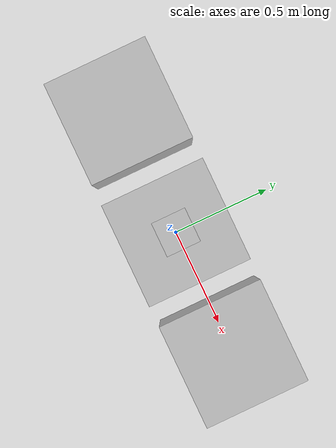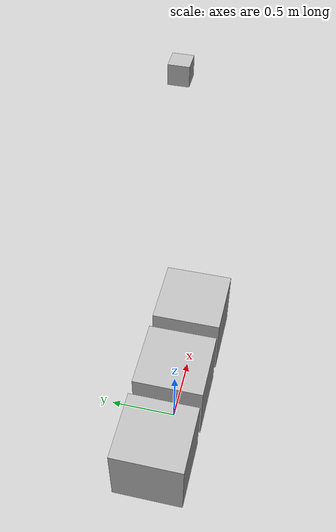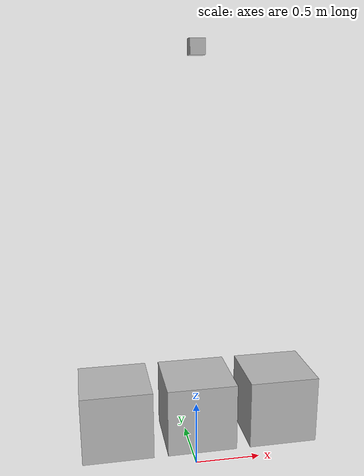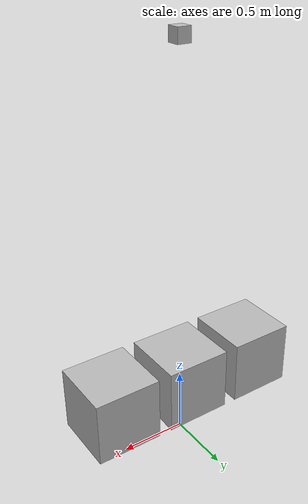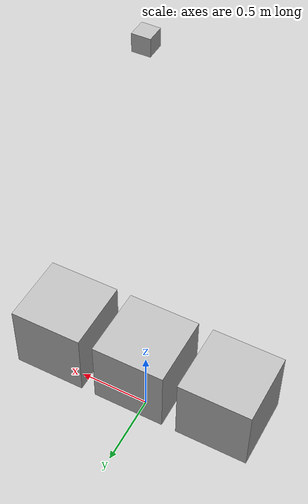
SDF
<?xml version="1.0" ?>
<sdf version="1.6">
  <world name="default">
    <!-- No sun or ground plane to avoid network model fetches -->

    <!-- Manual Light Source -->
    <light type="directional" name="sun_manual">
      <cast_shadows>true</cast_shadows>
      <pose>0 0 10 0 0 0</pose>
      <diffuse>0.8 0.8 0.8 1</diffuse>
      <specular>0.2 0.2 0.2 1</specular>
      <attenuation>
        <range>1000</range>
        <constant>0.9</constant>
        <linear>0.01</linear>
        <quadratic>0.001</quadratic>
      </attenuation>
      <direction>-0.5 0.1 -0.9</direction>
    </light>

    <!-- Boxes -->
    <!-- Box 1: Robocon (Center) -->
    <include>
      <uri>model://box_robocon</uri>
      <pose>0 0 0.5 0 0 0</pose>
    </include>

    <!-- Box 2: D-01 (Right) -->
    <include>
      <uri>model://box_d01</uri>
      <pose>0.6 0 0.5 0 0 0</pose>
    </include>

    <!-- Box 3: Custom (Left) -->
    <include>
      <uri>model://box_custom</uri>
      <pose>-0.6 0 0.5 0 0 0</pose>
    </include>

    <!-- Camera -->
    <!-- Positioned at y=-4, z=1, rotated 90 deg yaw to face +y (towards boxes) -->
    <include>
      <uri>model://camera_ros</uri>
      <pose>0 0 3 0 1.57 0</pose>
    </include>
  </world>
</sdf>

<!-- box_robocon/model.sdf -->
<sdf version="1.6">
  <model name="box_robocon">
    <static>true</static>
    <link name="link">
      <visual name="visual">
        <geometry>
          <box>
            <size>0.5 0.5 0.5</size> <!-- 50cm box -->
          </box>
        </geometry>
        <material>
          <script>
            <uri>model://box_robocon/materials/scripts</uri>
            <uri>model://box_robocon/materials/textures</uri>
            <name>Robocon/Logo</name>
          </script>
        </material>
      </visual>
      <collision name="collision">
        <geometry>
          <box>
            <size>0.5 0.5 0.5</size>
          </box>
        </geometry>
      </collision>
    </link>
  </model>
</sdf>

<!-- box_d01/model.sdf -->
<sdf version="1.6">
  <model name="box_d01">
    <static>true</static>
    <link name="link">
      <visual name="visual">
        <geometry>
          <box>
            <size>0.5 0.5 0.5</size> <!-- 50cm box -->
          </box>
        </geometry>
        <material>
          <script>
            <uri>model://box_d01/materials/scripts</uri>
            <uri>model://box_d01/materials/textures</uri>
            <name>Robocon/D01</name>
          </script>
        </material>
      </visual>
      <collision name="collision">
        <geometry>
          <box>
            <size>0.5 0.5 0.5</size>
          </box>
        </geometry>
      </collision>
    </link>
  </model>
</sdf>

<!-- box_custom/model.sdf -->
<sdf version="1.6">
  <model name="box_custom">
    <static>true</static>
    <link name="link">
      <visual name="visual">
        <geometry>
          <box>
            <size>0.5 0.5 0.5</size>
          </box>
        </geometry>
        <material>
          <script>
            <uri>model://box_custom/materials/scripts</uri>
            <uri>model://box_custom/materials/textures</uri>
            <name>Robocon/FakeKFS_v2</name>
          </script>
        </material>
      </visual>
      <collision name="collision">
        <geometry>
          <box>
            <size>0.5 0.5 0.5</size>
          </box>
        </geometry>
      </collision>
    </link>
  </model>
</sdf>

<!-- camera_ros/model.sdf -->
<sdf version="1.6">
  <model name="camera_ros">
    <static>true</static>
    <link name="link">
      <gravity>false</gravity>
      <visual name="visual">
        <geometry>
          <box>
            <size>0.1 0.1 0.1</size>
          </box>
        </geometry>
      </visual>
      <sensor type="camera" name="camera1">
        <update_rate>30.0</update_rate>
        <camera name="head">
          <horizontal_fov>1.3962634</horizontal_fov>
          <image>
            <width>800</width>
            <height>800</height>
            <format>R8G8B8</format>
          </image>
          <clip>
            <near>0.02</near>
            <far>300</far>
          </clip>
        </camera>
        <plugin name="camera_controller" filename="libgazebo_ros_camera.so">
          <alwaysOn>true</alwaysOn>
          <updateRate>0.0</updateRate>
          <cameraName>camera1</cameraName>
          <imageTopicName>image_raw</imageTopicName>
          <cameraInfoTopicName>camera_info</cameraInfoTopicName>
          <frameName>camera_link</frameName>
          <hackBaseline>0.07</hackBaseline>
          <distortionK1>0.0</distortionK1>
          <distortionK2>0.0</distortionK2>
          <distortionK3>0.0</distortionK3>
          <distortionT1>0.0</distortionT1>
          <distortionT2>0.0</distortionT2>
        </plugin>
      </sensor>
    </link>
  </model>
</sdf>
